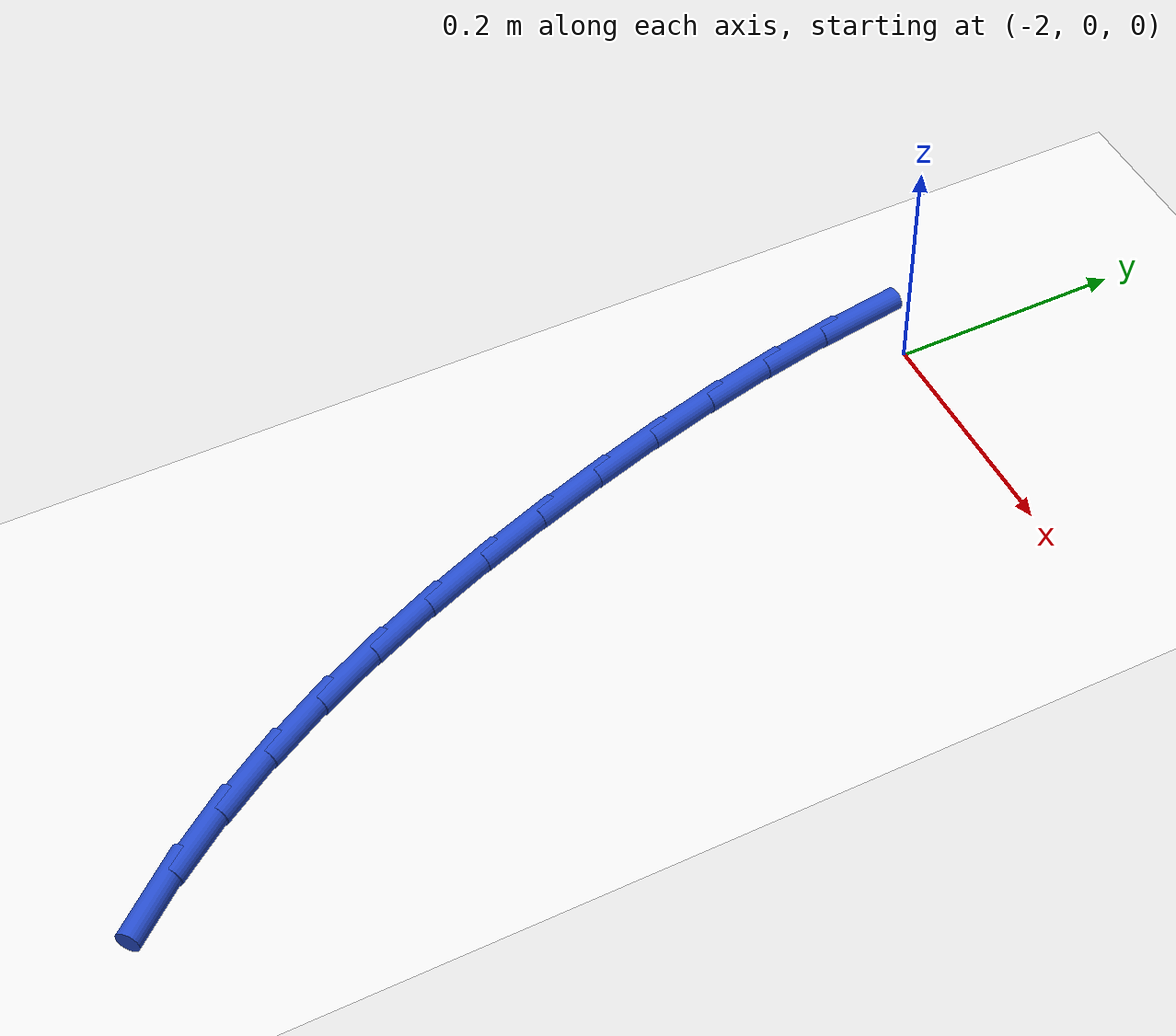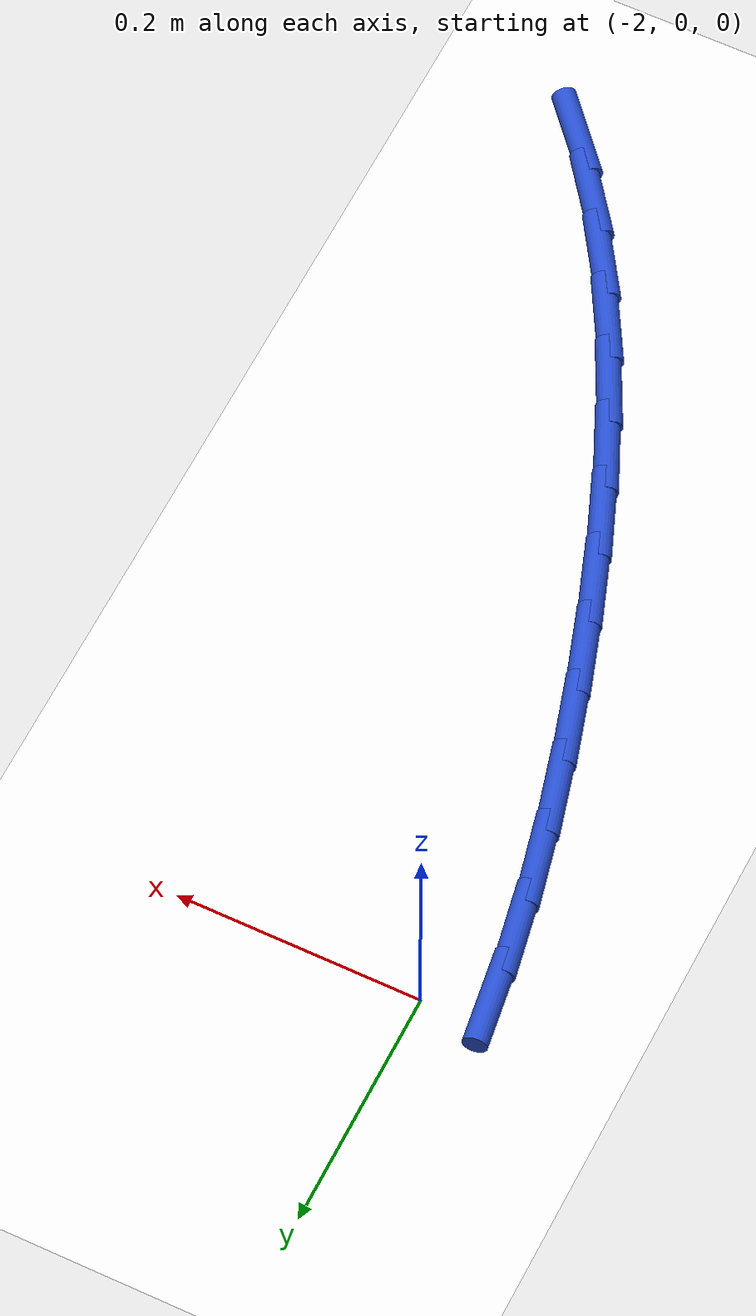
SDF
<sdf version="1.6">
 <world name="default">
  <model name="ground_plane">
   <static>1</static>
   <link name="link">
    <collision name="collision">
     <geometry><plane><normal>0 0 1</normal><size>100 100</size></plane></geometry>
     <surface><friction><ode><mu>100</mu><mu2>50</mu2></ode></friction></surface>
    </collision>
    <visual name="visual">
     <cast_shadows>0</cast_shadows>
     <geometry><plane><normal>0 0 1</normal><size>100 100</size></plane></geometry>
     <material>
      <script><uri>file://media/materials/scripts/gazebo.material</uri><name>Gazebo/WhiteGlow</name></script>
     </material>
    </visual>
   </link>
  </model>
  <model name="line">
   <link name="link_56">
    <pose>-2.0478678906743326 -0.018793232391159376 0.01 0 1.57 -1.4260683307383004</pose>
    <collision name="collision">
     <geometry><cylinder><radius>0.01</radius><length>0.08</length></cylinder></geometry>
    </collision>
    <visual name="visual">
     <material>
      <script><name>Gazebo/Blue</name><uri>file://media/materials/scripts/gazebo.material</uri></script>
     </material>
     <geometry><cylinder><radius>0.01</radius><length>0.08</length></cylinder></geometry>
    </visual>
   </link>
   <link name="link_57">
    <pose>-2.0391287509915483 -0.07875424414167148 0.01 0 1.57 -1.3815174979166511</pose>
    <collision name="collision">
     <geometry><cylinder><radius>0.01</radius><length>0.08</length></cylinder></geometry>
    </collision>
    <visual name="visual">
     <material>
      <script><name>Gazebo/Blue</name><uri>file://media/materials/scripts/gazebo.material</uri></script>
     </material>
     <geometry><cylinder><radius>0.01</radius><length>0.08</length></cylinder></geometry>
    </visual>
   </link>
   <link name="link_58">
    <pose>-2.02762806395633 -0.13878744975205604 0.01 0 1.57 -1.3423656785295677</pose>
    <collision name="collision">
     <geometry><cylinder><radius>0.01</radius><length>0.08</length></cylinder></geometry>
    </collision>
    <visual name="visual">
     <material>
      <script><name>Gazebo/Blue</name><uri>file://media/materials/scripts/gazebo.material</uri></script>
     </material>
     <geometry><cylinder><radius>0.01</radius><length>0.08</length></cylinder></geometry>
    </visual>
   </link>
   <link name="link_59">
    <pose>-2.0137065755522796 -0.19866776030440803 0.01 0 1.57 -1.3080885915204588</pose>
    <collision name="collision">
     <geometry><cylinder><radius>0.01</radius><length>0.08</length></cylinder></geometry>
    </collision>
    <visual name="visual">
     <material>
      <script><name>Gazebo/Blue</name><uri>file://media/materials/scripts/gazebo.material</uri></script>
     </material>
     <geometry><cylinder><radius>0.01</radius><length>0.08</length></cylinder></geometry>
    </visual>
   </link>
   <link name="link_60">
    <pose>-1.9977050317629979 -0.25817008688081966 0.01 0 1.57 -1.2782327838534677</pose>
    <collision name="collision">
     <geometry><cylinder><radius>0.01</radius><length>0.08</length></cylinder></geometry>
    </collision>
    <visual name="visual">
     <material>
      <script><name>Gazebo/Blue</name><uri>file://media/materials/scripts/gazebo.material</uri></script>
     </material>
     <geometry><cylinder><radius>0.01</radius><length>0.08</length></cylinder></geometry>
    </visual>
   </link>
   <link name="link_61">
    <pose>-1.9799641785720858 -0.31706934056338604 0.01 0 1.57 -1.2521862176752518</pose>
    <collision name="collision">
     <geometry><cylinder><radius>0.01</radius><length>0.08</length></cylinder></geometry>
    </collision>
    <visual name="visual">
     <material>
      <script><name>Gazebo/Blue</name><uri>file://media/materials/scripts/gazebo.material</uri></script>
     </material>
     <geometry><cylinder><radius>0.01</radius><length>0.08</length></cylinder></geometry>
    </visual>
   </link>
   <link name="link_62">
    <pose>-1.9608092174184646 -0.3751414984296189 0.01 0 1.57 -1.2248893147615603</pose>
    <collision name="collision">
     <geometry><cylinder><radius>0.01</radius><length>0.08</length></cylinder></geometry>
    </collision>
    <visual name="visual">
     <material>
      <script><name>Gazebo/Blue</name><uri>file://media/materials/scripts/gazebo.material</uri></script>
     </material>
     <geometry><cylinder><radius>0.01</radius><length>0.08</length></cylinder></geometry>
    </visual>
   </link>
   <link name="link_63">
    <pose>-1.9402512412747517 -0.4321840781163227 0.01 0 1.57 -1.1916894047501485</pose>
    <collision name="collision">
     <geometry><cylinder><radius>0.01</radius><length>0.08</length></cylinder></geometry>
    </collision>
    <visual name="visual">
     <material>
      <script><name>Gazebo/Blue</name><uri>file://media/materials/scripts/gazebo.material</uri></script>
     </material>
     <geometry><cylinder><radius>0.01</radius><length>0.08</length></cylinder></geometry>
    </visual>
   </link>
   <link name="link_64">
    <pose>-1.9180096141118361 -0.48801460310710876 0.01 0 1.57 -1.1522213360005484</pose>
    <collision name="collision">
     <geometry><cylinder><radius>0.01</radius><length>0.08</length></cylinder></geometry>
    </collision>
    <visual name="visual">
     <material>
      <script><name>Gazebo/Blue</name><uri>file://media/materials/scripts/gazebo.material</uri></script>
     </material>
     <geometry><cylinder><radius>0.01</radius><length>0.08</length></cylinder></geometry>
    </visual>
   </link>
   <link name="link_65">
    <pose>-1.893792638915592 -0.542451355412752 0.01 0 1.57 -1.1063410510170206</pose>
    <collision name="collision">
     <geometry><cylinder><radius>0.01</radius><length>0.08</length></cylinder></geometry>
    </collision>
    <visual name="visual">
     <material>
      <script><name>Gazebo/Blue</name><uri>file://media/materials/scripts/gazebo.material</uri></script>
     </material>
     <geometry><cylinder><radius>0.01</radius><length>0.08</length></cylinder></geometry>
    </visual>
   </link>
   <link name="link_66">
    <pose>-1.8673086186718943 -0.5953126170440277 0.01 0 1.57 -1.0540069861987</pose>
    <collision name="collision">
     <geometry><cylinder><radius>0.01</radius><length>0.08</length></cylinder></geometry>
    </collision>
    <visual name="visual">
     <material>
      <script><name>Gazebo/Blue</name><uri>file://media/materials/scripts/gazebo.material</uri></script>
     </material>
     <geometry><cylinder><radius>0.01</radius><length>0.08</length></cylinder></geometry>
    </visual>
   </link>
   <link name="link_67">
    <pose>-1.8382658563666194 -0.6464166700117091 0.01 0 1.57 -0.9953386261522699</pose>
    <collision name="collision">
     <geometry><cylinder><radius>0.01</radius><length>0.08</length></cylinder></geometry>
    </collision>
    <visual name="visual">
     <material>
      <script><name>Gazebo/Blue</name><uri>file://media/materials/scripts/gazebo.material</uri></script>
     </material>
     <geometry><cylinder><radius>0.01</radius><length>0.08</length></cylinder></geometry>
    </visual>
   </link>
   <link name="link_68">
    <pose>-1.806372654985641 -0.6955817963265714 0.01 0 1.57 -0.9306779172185947</pose>
    <collision name="collision">
     <geometry><cylinder><radius>0.01</radius><length>0.08</length></cylinder></geometry>
    </collision>
    <visual name="visual">
     <material>
      <script><name>Gazebo/Blue</name><uri>file://media/materials/scripts/gazebo.material</uri></script>
     </material>
     <geometry><cylinder><radius>0.01</radius><length>0.08</length></cylinder></geometry>
    </visual>
   </link>
   <link name="link_69">
    <pose>-1.7713373175148357 -0.7426262779993882 0.01 0 1.57 -0.8606470783935146</pose>
    <collision name="collision">
     <geometry><cylinder><radius>0.01</radius><length>0.08</length></cylinder></geometry>
    </collision>
    <visual name="visual">
     <material>
      <script><name>Gazebo/Blue</name><uri>file://media/materials/scripts/gazebo.material</uri></script>
     </material>
     <geometry><cylinder><radius>0.01</radius><length>0.08</length></cylinder></geometry>
    </visual>
   </link>
  </model>
 </world>
</sdf>
